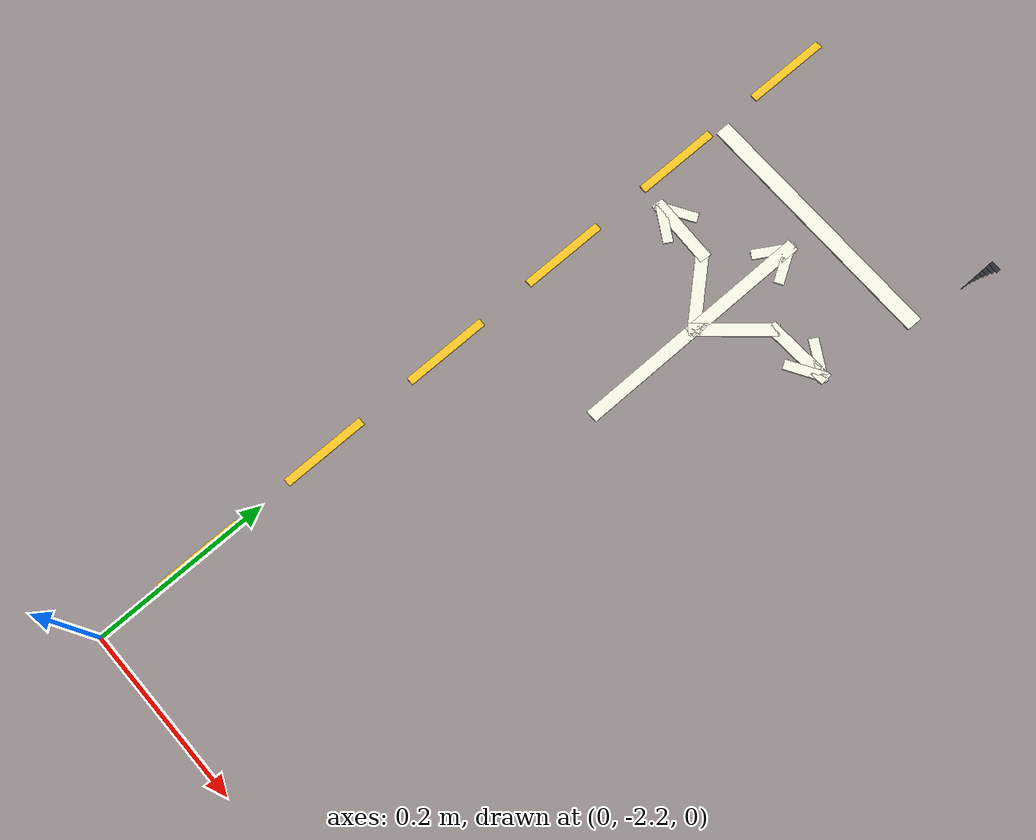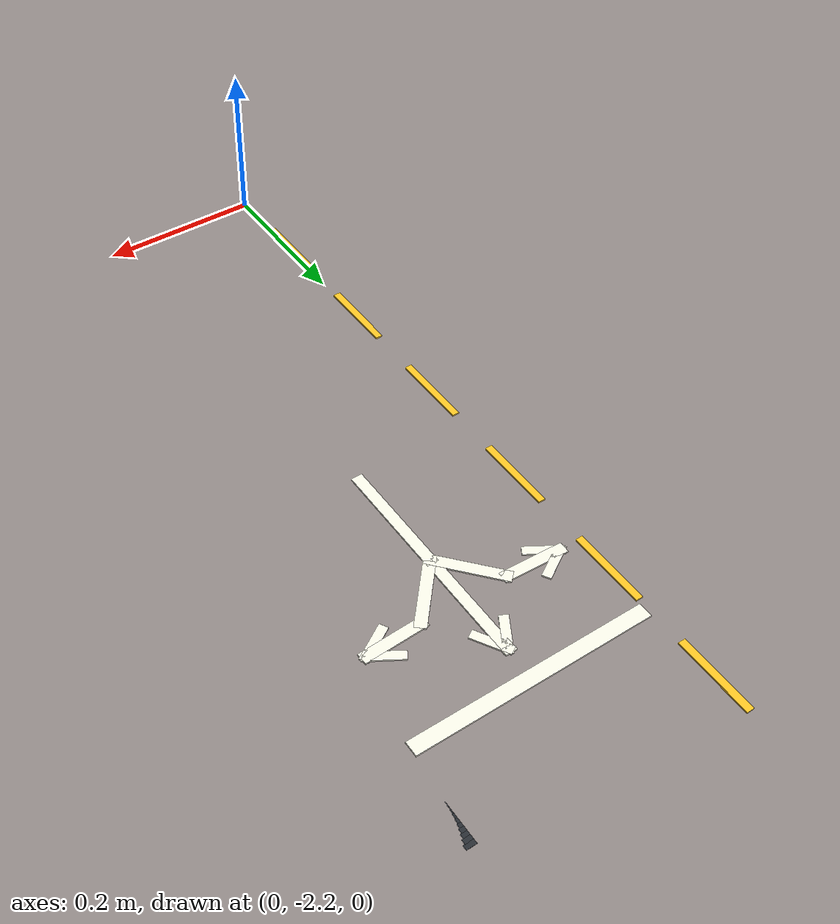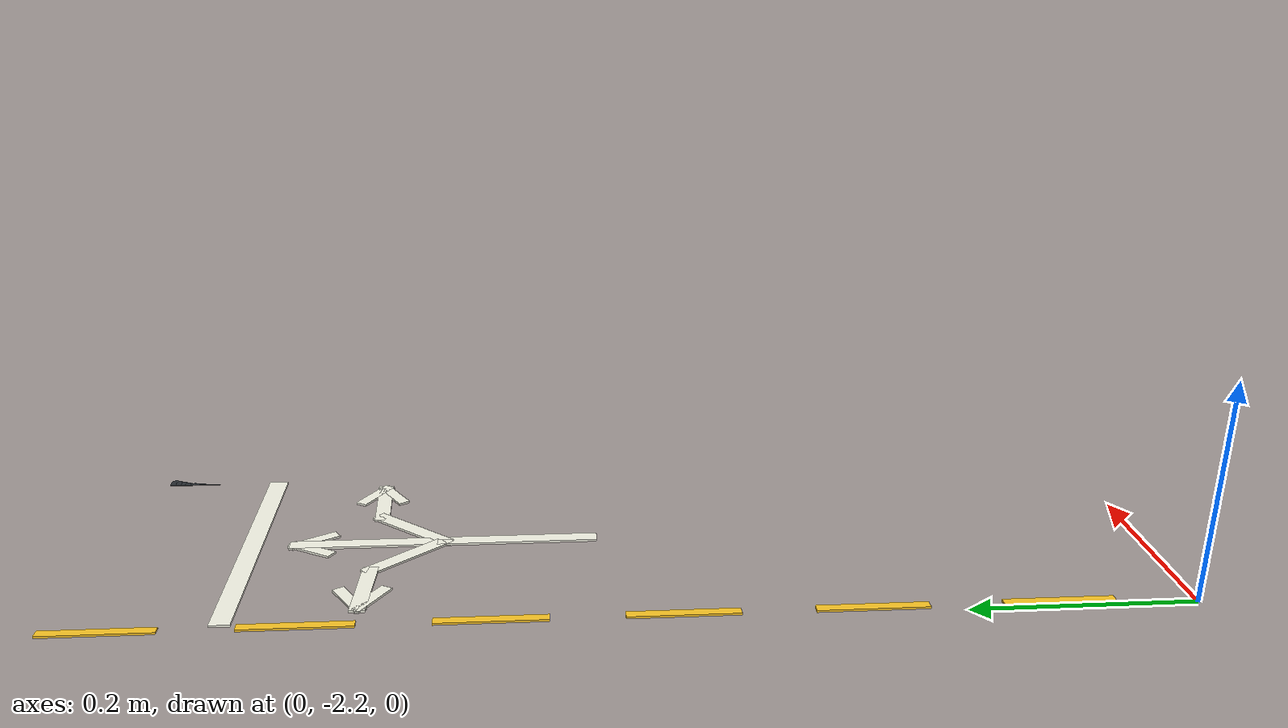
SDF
<sdf version="1.6">
 <world name="sandbox">
  <include><uri>model://sun</uri></include>
  <model name="cross_corner_0.3_-1.2_13">
   <static>true</static>
   <pose>0.306047 -1.267500 0.004350 0.000000 0.000000 0.000000</pose>
   <link name="body">
    <visual name="visual">
     <geometry><box><size>0.012094 0.005500 0.000700</size></box></geometry>
     <material><ambient>0.16 0.18 0.20 1</ambient><diffuse>0.16 0.18 0.20 1</diffuse></material>
    </visual>
   </link>
  </model>
  <model name="cross_corner_0.3_-1.2_14">
   <static>true</static>
   <pose>0.304901 -1.272500 0.004350 0.000000 0.000000 0.000000</pose>
   <link name="body">
    <visual name="visual">
     <geometry><box><size>0.009801 0.005500 0.000700</size></box></geometry>
     <material><ambient>0.16 0.18 0.20 1</ambient><diffuse>0.16 0.18 0.20 1</diffuse></material>
    </visual>
   </link>
  </model>
  <model name="cross_corner_0.3_-1.2_15">
   <static>true</static>
   <pose>0.303889 -1.277500 0.004350 0.000000 0.000000 0.000000</pose>
   <link name="body">
    <visual name="visual">
     <geometry><box><size>0.007778 0.005500 0.000700</size></box></geometry>
     <material><ambient>0.16 0.18 0.20 1</ambient><diffuse>0.16 0.18 0.20 1</diffuse></material>
    </visual>
   </link>
  </model>
  <model name="cross_corner_0.3_-1.2_16">
   <static>true</static>
   <pose>0.303005 -1.282500 0.004350 0.000000 0.000000 0.000000</pose>
   <link name="body">
    <visual name="visual">
     <geometry><box><size>0.006010 0.005500 0.000700</size></box></geometry>
     <material><ambient>0.16 0.18 0.20 1</ambient><diffuse>0.16 0.18 0.20 1</diffuse></material>
    </visual>
   </link>
  </model>
  <model name="cross_corner_0.3_-1.2_17">
   <static>true</static>
   <pose>0.302242 -1.287500 0.004350 0.000000 0.000000 0.000000</pose>
   <link name="body">
    <visual name="visual">
     <geometry><box><size>0.004485 0.005500 0.000700</size></box></geometry>
     <material><ambient>0.16 0.18 0.20 1</ambient><diffuse>0.16 0.18 0.20 1</diffuse></material>
    </visual>
   </link>
  </model>
  <model name="cross_corner_0.3_-1.2_18">
   <static>true</static>
   <pose>0.301597 -1.292500 0.004350 0.000000 0.000000 0.000000</pose>
   <link name="body">
    <visual name="visual">
     <geometry><box><size>0.003194 0.005500 0.000700</size></box></geometry>
     <material><ambient>0.16 0.18 0.20 1</ambient><diffuse>0.16 0.18 0.20 1</diffuse></material>
    </visual>
   </link>
  </model>
  <model name="cross_corner_0.3_-1.2_19">
   <static>true</static>
   <pose>0.301064 -1.297500 0.004350 0.000000 0.000000 0.000000</pose>
   <link name="body">
    <visual name="visual">
     <geometry><box><size>0.002128 0.005500 0.000700</size></box></geometry>
     <material><ambient>0.16 0.18 0.20 1</ambient><diffuse>0.16 0.18 0.20 1</diffuse></material>
    </visual>
   </link>
  </model>
  <model name="cross_corner_0.3_-1.2_20">
   <static>true</static>
   <pose>0.300641 -1.302500 0.004350 0.000000 0.000000 0.000000</pose>
   <link name="body">
    <visual name="visual">
     <geometry><box><size>0.001283 0.005500 0.000700</size></box></geometry>
     <material><ambient>0.16 0.18 0.20 1</ambient><diffuse>0.16 0.18 0.20 1</diffuse></material>
    </visual>
   </link>
  </model>
  <model name="cross_corner_0.3_-1.2_21">
   <static>true</static>
   <pose>0.300326 -1.307500 0.004350 0.000000 0.000000 0.000000</pose>
   <link name="body">
    <visual name="visual">
     <geometry><box><size>0.000653 0.005500 0.000700</size></box></geometry>
     <material><ambient>0.16 0.18 0.20 1</ambient><diffuse>0.16 0.18 0.20 1</diffuse></material>
    </visual>
   </link>
  </model>
  <model name="cross_corner_0.3_-1.2_22">
   <static>true</static>
   <pose>0.300117 -1.312500 0.004350 0.000000 0.000000 0.000000</pose>
   <link name="body">
    <visual name="visual">
     <geometry><box><size>0.000235 0.005500 0.000700</size></box></geometry>
     <material><ambient>0.16 0.18 0.20 1</ambient><diffuse>0.16 0.18 0.20 1</diffuse></material>
    </visual>
   </link>
  </model>
  <model name="vert_center_1">
   <static>true</static>
   <pose>0.000000 -2.077500 0.006000 0.000000 -0.000000 1.570796</pose>
   <link name="body">
    <visual name="visual">
     <geometry><box><size>0.097000 0.009000 0.002000</size></box></geometry>
     <material><ambient>0.98 0.77 0.14 1</ambient><diffuse>0.98 0.77 0.14 1</diffuse></material>
    </visual>
   </link>
  </model>
  <model name="vert_center_2">
   <static>true</static>
   <pose>0.000000 -1.917500 0.006000 0.000000 -0.000000 1.570796</pose>
   <link name="body">
    <visual name="visual">
     <geometry><box><size>0.097000 0.009000 0.002000</size></box></geometry>
     <material><ambient>0.98 0.77 0.14 1</ambient><diffuse>0.98 0.77 0.14 1</diffuse></material>
    </visual>
   </link>
  </model>
  <model name="vert_center_3">
   <static>true</static>
   <pose>0.000000 -1.757500 0.006000 0.000000 -0.000000 1.570796</pose>
   <link name="body">
    <visual name="visual">
     <geometry><box><size>0.097000 0.009000 0.002000</size></box></geometry>
     <material><ambient>0.98 0.77 0.14 1</ambient><diffuse>0.98 0.77 0.14 1</diffuse></material>
    </visual>
   </link>
  </model>
  <model name="vert_center_4">
   <static>true</static>
   <pose>0.000000 -1.597500 0.006000 0.000000 -0.000000 1.570796</pose>
   <link name="body">
    <visual name="visual">
     <geometry><box><size>0.097000 0.009000 0.002000</size></box></geometry>
     <material><ambient>0.98 0.77 0.14 1</ambient><diffuse>0.98 0.77 0.14 1</diffuse></material>
    </visual>
   </link>
  </model>
  <model name="vert_center_5">
   <static>true</static>
   <pose>0.000000 -1.437500 0.006000 0.000000 -0.000000 1.570796</pose>
   <link name="body">
    <visual name="visual">
     <geometry><box><size>0.097000 0.009000 0.002000</size></box></geometry>
     <material><ambient>0.98 0.77 0.14 1</ambient><diffuse>0.98 0.77 0.14 1</diffuse></material>
    </visual>
   </link>
  </model>
  <model name="vert_center_6">
   <static>true</static>
   <pose>0.000000 -1.277500 0.006000 0.000000 -0.000000 1.570796</pose>
   <link name="body">
    <visual name="visual">
     <geometry><box><size>0.097000 0.009000 0.002000</size></box></geometry>
     <material><ambient>0.98 0.77 0.14 1</ambient><diffuse>0.98 0.77 0.14 1</diffuse></material>
    </visual>
   </link>
  </model>
  <model name="stop_south">
   <static>true</static>
   <pose>0.150000 -1.375000 0.006000 0.000000 -0.000000 0.000000</pose>
   <link name="body">
    <visual name="visual">
     <geometry><box><size>0.292000 0.018000 0.002000</size></box></geometry>
     <material><ambient>0.96 0.96 0.90 1</ambient><diffuse>0.96 0.96 0.90 1</diffuse></material>
    </visual>
   </link>
  </model>
  <model name="cross_from_south_stem">
   <static>true</static>
   <pose>0.150000 -1.617500 0.006000 0.000000 -0.000000 1.570796</pose>
   <link name="body">
    <visual name="visual">
     <geometry><box><size>0.147000 0.014000 0.002000</size></box></geometry>
     <material><ambient>0.96 0.96 0.90 1</ambient><diffuse>0.96 0.96 0.90 1</diffuse></material>
    </visual>
   </link>
  </model>
  <model name="cross_from_south_straight">
   <static>true</static>
   <pose>0.150000 -1.482500 0.006000 0.000000 -0.000000 1.570796</pose>
   <link name="body">
    <visual name="visual">
     <geometry><box><size>0.147000 0.014000 0.002000</size></box></geometry>
     <material><ambient>0.96 0.96 0.90 1</ambient><diffuse>0.96 0.96 0.90 1</diffuse></material>
    </visual>
   </link>
  </model>
  <model name="cross_from_south_straight_head_-1">
   <static>true</static>
   <pose>0.159000 -1.430000 0.006000 0.000000 -0.000000 2.111216</pose>
   <link name="body">
    <visual name="visual">
     <geometry><box><size>0.046986 0.011000 0.002000</size></box></geometry>
     <material><ambient>0.96 0.96 0.90 1</ambient><diffuse>0.96 0.96 0.90 1</diffuse></material>
    </visual>
   </link>
  </model>
  <model name="cross_from_south_straight_head_1">
   <static>true</static>
   <pose>0.141000 -1.430000 0.006000 0.000000 -0.000000 1.030377</pose>
   <link name="body">
    <visual name="visual">
     <geometry><box><size>0.046986 0.011000 0.002000</size></box></geometry>
     <material><ambient>0.96 0.96 0.90 1</ambient><diffuse>0.96 0.96 0.90 1</diffuse></material>
    </visual>
   </link>
  </model>
  <model name="cross_from_south_left_branch">
   <static>true</static>
   <pose>0.122500 -1.519000 0.006000 0.000000 -0.000000 2.296437</pose>
   <link name="body">
    <visual name="visual">
     <geometry><box><size>0.094879 0.014000 0.002000</size></box></geometry>
     <material><ambient>0.96 0.96 0.90 1</ambient><diffuse>0.96 0.96 0.90 1</diffuse></material>
    </visual>
   </link>
  </model>
  <model name="cross_from_south_left_turn">
   <static>true</static>
   <pose>0.061000 -1.486500 0.006000 0.000000 -0.000000 3.097504</pose>
   <link name="body">
    <visual name="visual">
     <geometry><box><size>0.080066 0.014000 0.002000</size></box></geometry>
     <material><ambient>0.96 0.96 0.90 1</ambient><diffuse>0.96 0.96 0.90 1</diffuse></material>
    </visual>
   </link>
  </model>
  <model name="cross_from_south_left_head_-1">
   <static>true</static>
   <pose>0.042000 -1.476000 0.006000 0.000000 -0.000000 -2.601173</pose>
   <link name="body">
    <visual name="visual">
     <geometry><box><size>0.046986 0.011000 0.002000</size></box></geometry>
     <material><ambient>0.96 0.96 0.90 1</ambient><diffuse>0.96 0.96 0.90 1</diffuse></material>
    </visual>
   </link>
  </model>
  <model name="cross_from_south_left_head_1">
   <static>true</static>
   <pose>0.042000 -1.494000 0.006000 0.000000 -0.000000 2.601173</pose>
   <link name="body">
    <visual name="visual">
     <geometry><box><size>0.046986 0.011000 0.002000</size></box></geometry>
     <material><ambient>0.96 0.96 0.90 1</ambient><diffuse>0.96 0.96 0.90 1</diffuse></material>
    </visual>
   </link>
  </model>
  <model name="cross_from_south_right_branch">
   <static>true</static>
   <pose>0.177500 -1.519000 0.006000 0.000000 -0.000000 0.845156</pose>
   <link name="body">
    <visual name="visual">
     <geometry><box><size>0.094879 0.014000 0.002000</size></box></geometry>
     <material><ambient>0.96 0.96 0.90 1</ambient><diffuse>0.96 0.96 0.90 1</diffuse></material>
    </visual>
   </link>
  </model>
  <model name="cross_from_south_right_turn">
   <static>true</static>
   <pose>0.239000 -1.486500 0.006000 0.000000 -0.000000 0.044089</pose>
   <link name="body">
    <visual name="visual">
     <geometry><box><size>0.080066 0.014000 0.002000</size></box></geometry>
     <material><ambient>0.96 0.96 0.90 1</ambient><diffuse>0.96 0.96 0.90 1</diffuse></material>
    </visual>
   </link>
  </model>
  <model name="cross_from_south_right_head_-1">
   <static>true</static>
   <pose>0.258000 -1.494000 0.006000 0.000000 -0.000000 0.540420</pose>
   <link name="body">
    <visual name="visual">
     <geometry><box><size>0.046986 0.011000 0.002000</size></box></geometry>
     <material><ambient>0.96 0.96 0.90 1</ambient><diffuse>0.96 0.96 0.90 1</diffuse></material>
    </visual>
   </link>
  </model>
  <model name="cross_from_south_right_head_1">
   <static>true</static>
   <pose>0.258000 -1.476000 0.006000 0.000000 -0.000000 -0.540420</pose>
   <link name="body">
    <visual name="visual">
     <geometry><box><size>0.046986 0.011000 0.002000</size></box></geometry>
     <material><ambient>0.96 0.96 0.90 1</ambient><diffuse>0.96 0.96 0.90 1</diffuse></material>
    </visual>
   </link>
  </model>
 </world>
</sdf>
